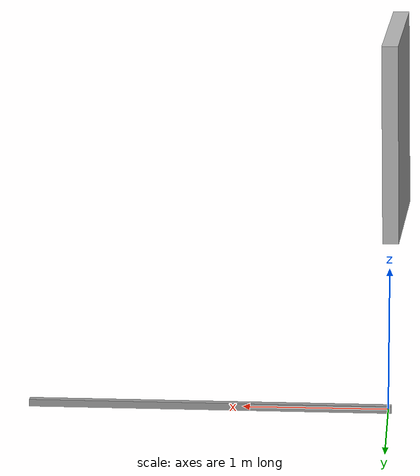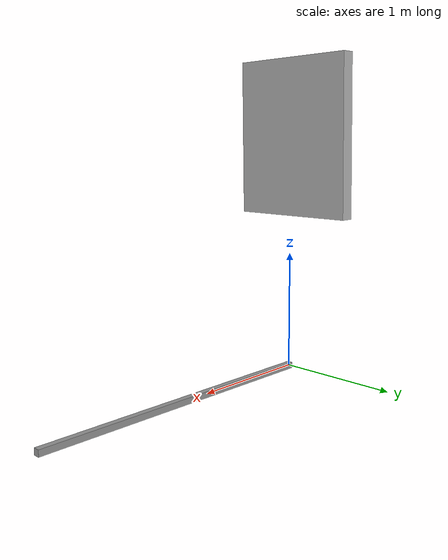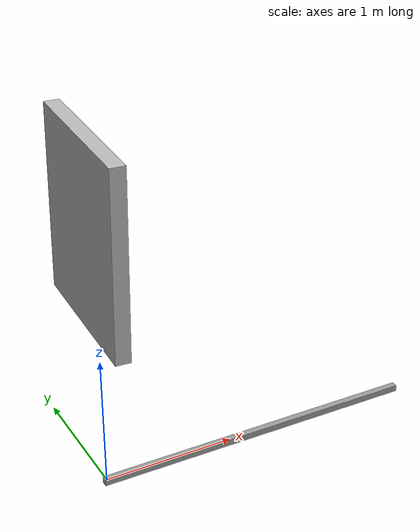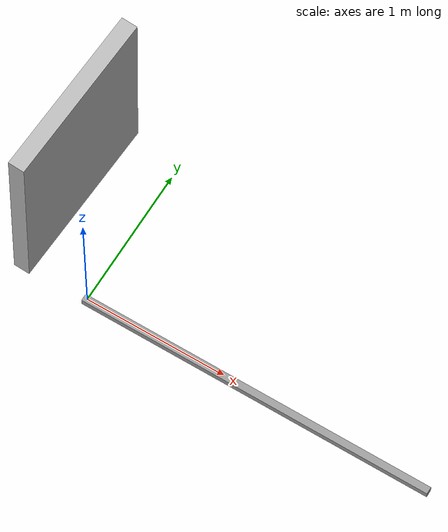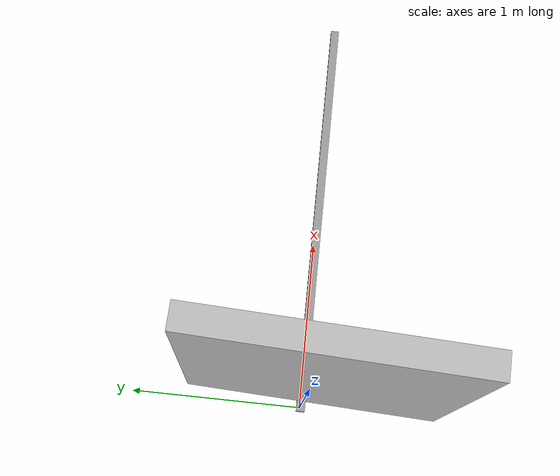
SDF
<?xml version='1.0'?>
<sdf version='1.7'>
  <model name='sign_board_stop'>
    <link name='link_0'>
      <inertial>
        <mass>1</mass>
        <inertia>
          <ixx>0.166667</ixx>
          <ixy>0</ixy>
          <ixz>0</ixz>
          <iyy>0.166667</iyy>
          <iyz>0</iyz>
          <izz>0.166667</izz>
        </inertia>
      </inertial>
      <pose>-0.022706 -0.007463 0 1.5708 -0.00111 1.56593</pose>
      <visual name='visual'>
        <pose>0 0 0 0 -0 0</pose>
        <geometry>
          <mesh>
            <uri>model://sign_board_turn/meshes/sign_stand.obj</uri>
            <scale>1 1 1</scale>
          </mesh>
        </geometry>
        <material>
          <lighting>1</lighting>
          <script>
            <uri>file://media/materials/scripts/gazebo.material</uri>
            <name>Gazebo/Grey</name>
          </script>
          <shader type='pixel'/>
          <emissive>0 0 0 1</emissive>
        </material>
        <transparency>0</transparency>
        <cast_shadows>1</cast_shadows>
      </visual>
      <collision name='collision'>
        <laser_retro>0</laser_retro>
        <max_contacts>10</max_contacts>
        <pose>0 0 0 0 -0 0</pose>
        <geometry>
          <mesh>
            <uri>model://sign_board_turn/meshes/sign_stand.obj</uri>
            <scale>1 1 1</scale>
          </mesh>
        </geometry>
        <surface>
          <friction>
            <ode>
              <mu>1</mu>
              <mu2>1</mu2>
              <fdir1>0 0 0</fdir1>
              <slip1>0</slip1>
              <slip2>0</slip2>
            </ode>
            <torsional>
              <coefficient>1</coefficient>
              <patch_radius>0</patch_radius>
              <surface_radius>0</surface_radius>
              <use_patch_radius>1</use_patch_radius>
              <ode>
                <slip>0</slip>
              </ode>
            </torsional>
          </friction>
          <bounce>
            <restitution_coefficient>0</restitution_coefficient>
            <threshold>1e+06</threshold>
          </bounce>
          <contact>
            <collide_without_contact>0</collide_without_contact>
            <collide_without_contact_bitmask>1</collide_without_contact_bitmask>
            <collide_bitmask>1</collide_bitmask>
            <ode>
              <soft_cfm>0</soft_cfm>
              <soft_erp>0.2</soft_erp>
              <kp>1e+13</kp>
              <kd>1</kd>
              <max_vel>0.01</max_vel>
              <min_depth>0</min_depth>
            </ode>
            <bullet>
              <split_impulse>1</split_impulse>
              <split_impulse_penetration_threshold>-0.01</split_impulse_penetration_threshold>
              <soft_cfm>0</soft_cfm>
              <soft_erp>0.2</soft_erp>
              <kp>1e+13</kp>
              <kd>1</kd>
            </bullet>
          </contact>
        </surface>
      </collision>
    </link>
    <link name='link_1'>
      <inertial>
        <mass>1</mass>
        <inertia>
          <ixx>0.166667</ixx>
          <ixy>0</ixy>
          <ixz>0</ixz>
          <iyy>0.166667</iyy>
          <iyz>0</iyz>
          <izz>0.166667</izz>
        </inertia>
      </inertial>
      <pose>0.022706 0.007463 2 0 1.55484 3.14</pose>
      <visual name='visual'>
        <pose>0 0 0 0 -0 0</pose>
        <geometry>
          <mesh>
            <uri>model://sign_board_turn/meshes/sign_board.obj</uri>
            <scale>1 1 1</scale>
          </mesh>
        </geometry>

        <material>
          <script>
            <uri>model://sign_board_turn/materials/scripts</uri>
            <uri>model://sign_board_turn/materials/textures</uri>
            <name>sign_board_turn/Diffuse</name>
          </script>
        </material>
        <transparency>0</transparency>
        <cast_shadows>1</cast_shadows>
      </visual>
      <collision name='collision'>
        <laser_retro>0</laser_retro>
        <max_contacts>10</max_contacts>
        <pose>0 0 0 0 -0 0</pose>
        <geometry>
          <mesh>
            <uri>model://sign_board_turn/meshes/sign_board.obj</uri>
            <scale>1 1 1</scale>
          </mesh>
        </geometry>
        <surface>
          <friction>
            <ode>
              <mu>1</mu>
              <mu2>1</mu2>
              <fdir1>0 0 0</fdir1>
              <slip1>0</slip1>
              <slip2>0</slip2>
            </ode>
            <torsional>
              <coefficient>1</coefficient>
              <patch_radius>0</patch_radius>
              <surface_radius>0</surface_radius>
              <use_patch_radius>1</use_patch_radius>
              <ode>
                <slip>0</slip>
              </ode>
            </torsional>
          </friction>
          <bounce>
            <restitution_coefficient>0</restitution_coefficient>
            <threshold>1e+06</threshold>
          </bounce>
          <contact>
            <collide_without_contact>0</collide_without_contact>
            <collide_without_contact_bitmask>1</collide_without_contact_bitmask>
            <collide_bitmask>1</collide_bitmask>
            <ode>
              <soft_cfm>0</soft_cfm>
              <soft_erp>0.2</soft_erp>
              <kp>1e+13</kp>
              <kd>1</kd>
              <max_vel>0.01</max_vel>
              <min_depth>0</min_depth>
            </ode>
            <bullet>
              <split_impulse>1</split_impulse>
              <split_impulse_penetration_threshold>-0.01</split_impulse_penetration_threshold>
              <soft_cfm>0</soft_cfm>
              <soft_erp>0.2</soft_erp>
              <kp>1e+13</kp>
              <kd>1</kd>
            </bullet>
          </contact>
        </surface>
      </collision>
    </link>
    <joint name='link_0_JOINT_0' type='fixed'>
      <parent>link_0</parent>
      <child>link_1</child>
      <pose>0 0 0 0 -0 0</pose>
      <physics>
        <ode>
          <limit>
            <cfm>0</cfm>
            <erp>0.2</erp>
          </limit>
          <suspension>
            <cfm>0</cfm>
            <erp>0.2</erp>
          </suspension>
        </ode>
      </physics>
    </joint>
    <static>1</static>
    <allow_auto_disable>1</allow_auto_disable>
  </model>
</sdf>
